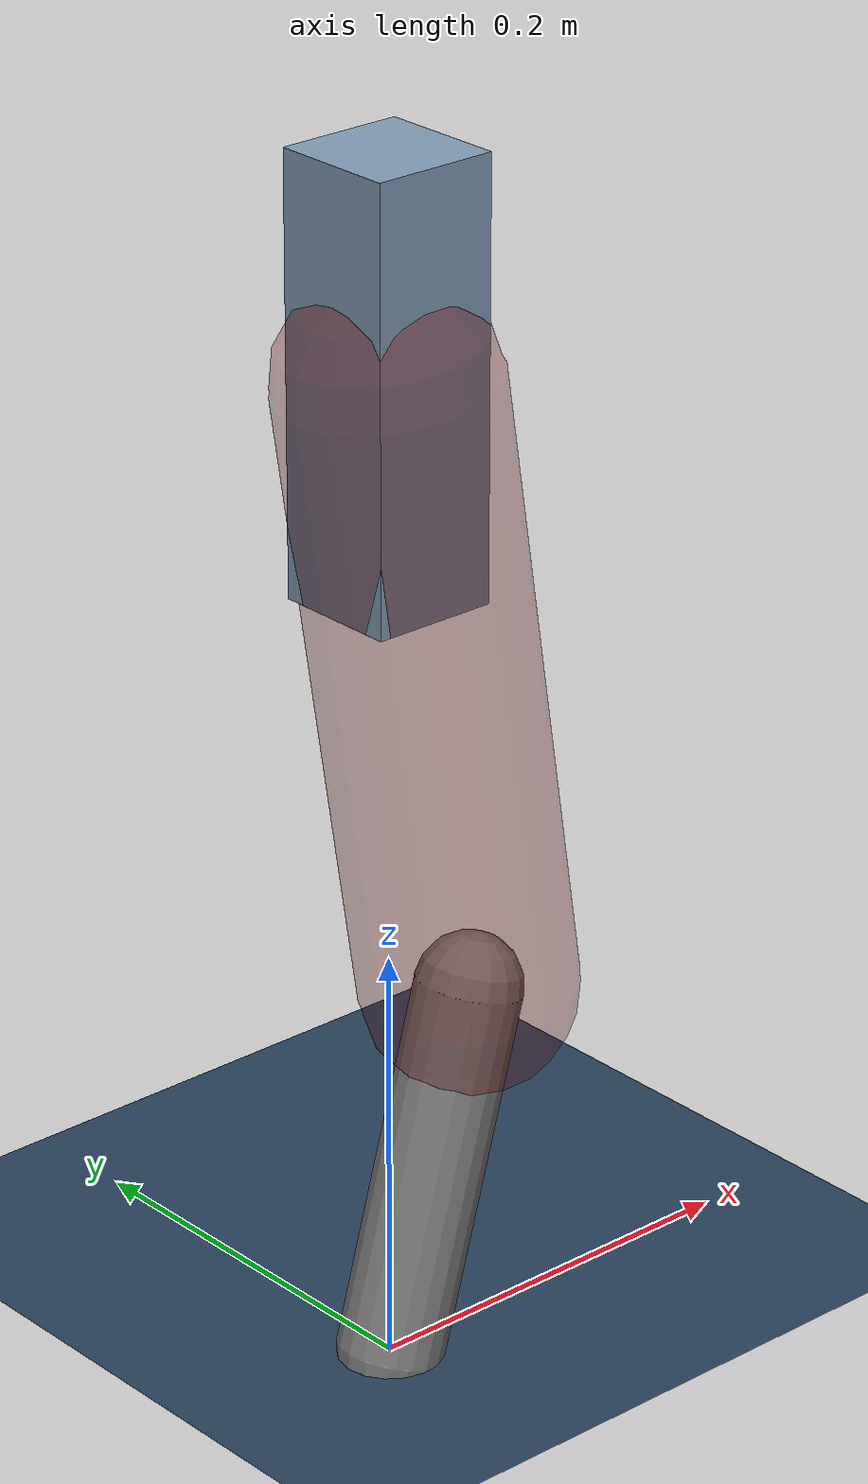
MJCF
<mujoco model="Hopper2D">
	<compiler inertiafromgeom="true" angle="radian" />
	<option timestep="0.001" integrator="implicit" cone="elliptic" solver="Newton" tolerance="1e-10" />

	<default>
		<geom contype="1" conaffinity="1" condim="3" friction="2 0.005 0.0001" solref="0.005 1" />
		<joint limited="true" damping="0.1" />
	</default>

	<asset>
		<texture name="skybox" type="skybox" builtin="gradient" rgb1=".4 .6 .8" rgb2="0 0 0" width="800" height="800" />
		<texture name="grid" type="2d" builtin="checker" rgb1=".1 .2 .3" rgb2=".2 .3 .4" width="300" height="300" mark="edge" markrgb=".2 .3 .4" />
		<material name="ground" texture="grid" texrepeat="1 1" texuniform="true" reflectance="0.1" />
		<material name="leg" rgba="0.5 0.6 0.7 1" />
	</asset>

	<worldbody>

		<geom name="floor" type="plane" size="5 5 0.25" material="ground" />

		<light directional="false" diffuse="0.8 0.8 0.8" specular="0.3 0.3 0.3" pos="0 0 2" dir="0 0 -1" />
		<light mode="targetbodycom" target="base" directional="false" diffuse="0.8 0.8 0.8" specular="0.3 0.3 0.3" pos="0 0 2" dir="0 0 -1" />

		<camera name="fixed" pos="0 -2 1" xyaxes="1 0 0 0 0 1" />
		<camera name="tracking" mode="trackcom" pos="0 -3 1" />

		<body name="root" pos="0 0 0.47066065450119104">
			<joint name="slide_x" type="slide" axis="1 0 0" range="-100 100" />
			<joint name="slide_z" type="slide" axis="0 0 1" range="0 10" />

			<body name="base" pos="0 0 0">
				<geom name="torso" type="box" size="0.03 0.03 0.1" mass="2.468" material="leg" />

				<body name="link1" pos="0 0 0" euler="0 1.4153527883889394 0">
					<joint type="hinge" axis="0 -1 0" pos="0 0 0" name="hinge1" limited="true" range="-3.14 3.14" stiffness="0" damping="0.1" />
					<geom name="thigh" type="capsule" fromto="0 0 0 0.30345614267160037 0 0" size="0.05" rgba="0.5 0 0 0.3" mass="0.998131585213321" />

					<body name="link2" pos="0.30345614267160037 0 0" euler="0 0.4237725296813563 0">
						<joint type="hinge" axis="0 -1 0" pos="0 0 0" name="hinge2" limited="true" range="-3.14 3.14" stiffness="0" damping="0.1" />
						<geom name="shank" type="capsule" fromto="0 0 0 0.17720451182959068 0 0" size="0.025" mass="0.3814840606466316" />

					</body>
				</body>
			</body>
		</body>
	</worldbody>

	<actuator>
		<motor name="torque1" joint="hinge1" ctrlrange="-109.58671879669303 109.58671879669303" ctrllimited="true" gear="1" />
		<motor name="torque2" joint="hinge2" ctrlrange="-68.02908563058888 68.02908563058888" ctrllimited="true" gear="1" />
	</actuator>
</mujoco>
